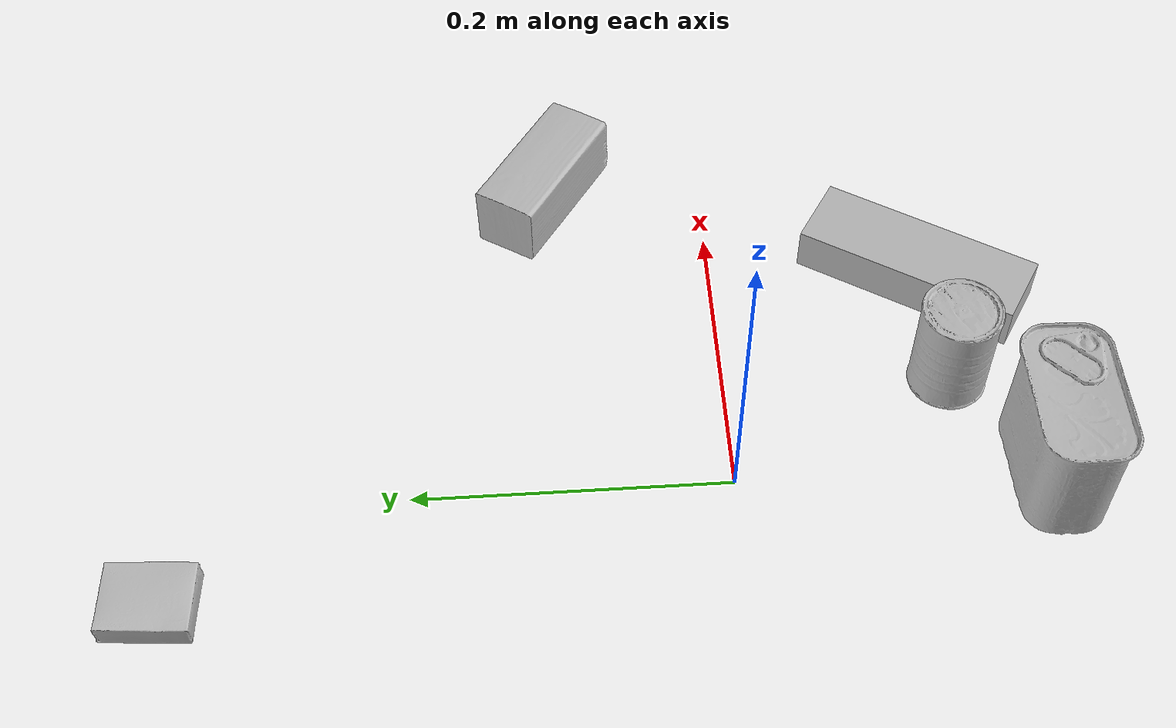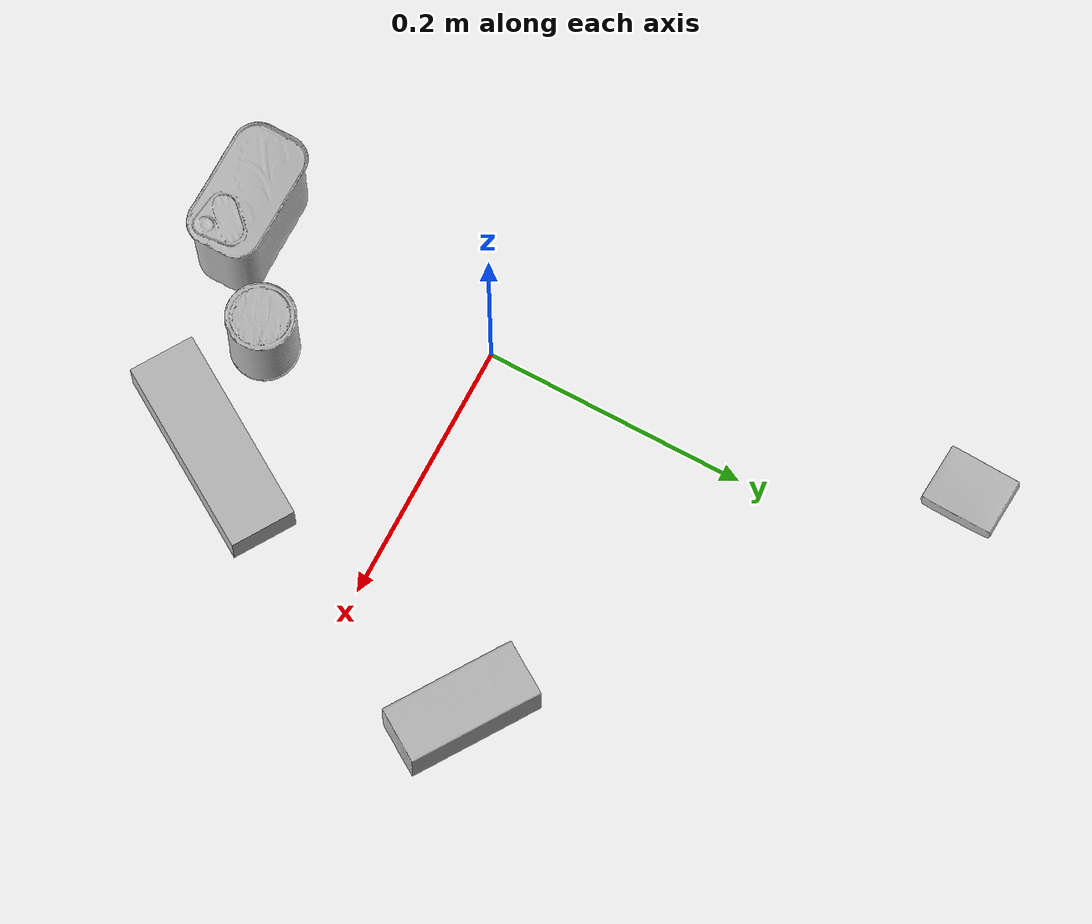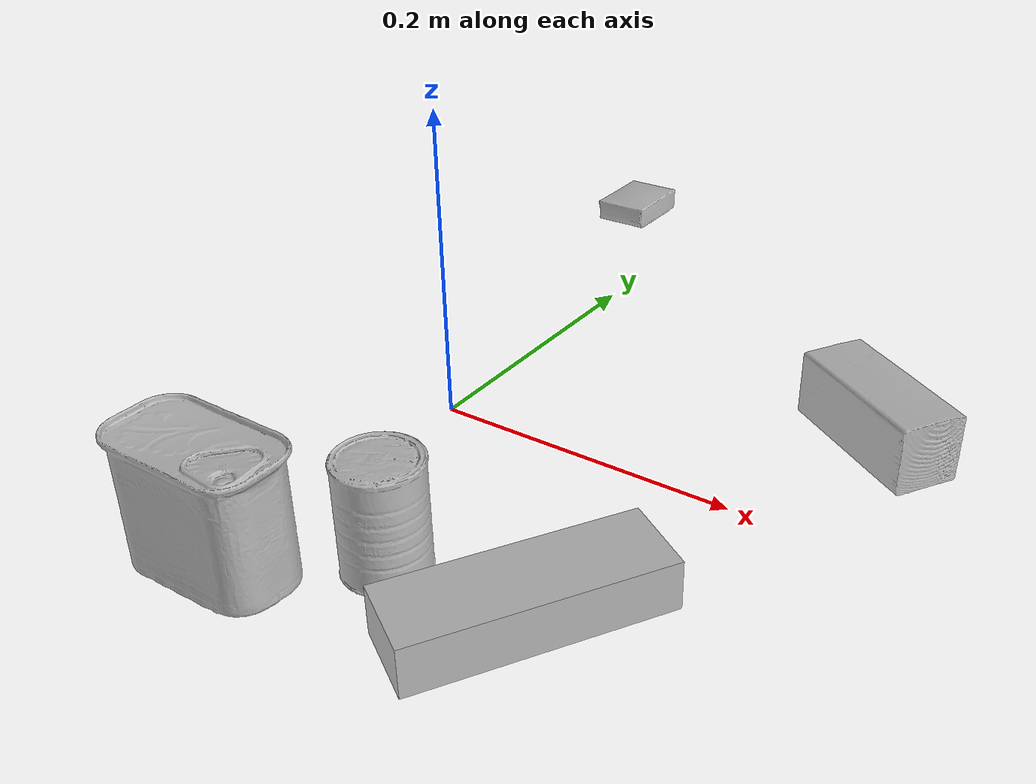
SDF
<sdf version="1.4">
  <world name="default">
    <light name="light1" type="point">
      <pose>0 0 1 0 0 0</pose>
      <diffuse>3 3 3 1</diffuse>
      <specular>3 3 3 1</specular>
    </light>
    <light name="light2" type="point">
      <pose>0 0.5 2 0 0 0</pose>
      <diffuse>1 1 1 1</diffuse>
      <specular>1 1 1 1</specular>
    </light>
    <light name="light3" type="point">
      <pose>0 0.5 2 0 0 0</pose>
      <diffuse>3 3 3 1</diffuse>
      <specular>3 3 3 1</specular>
    </light>
    <scene>
      <ambient>0.7 0.7 0.7</ambient>
    </scene>
    <model name="box1">
      <link name="link_box1">
        <collision name="default">
          <geometry>
            <mesh>
              <uri>model://pudding_box/collision_meshes/collision.obj</uri>
              <scale>0.5 0.5 0.5</scale>
            </mesh>
          </geometry>
          <surface>
            <friction>
              <ode>
                <mu>0.5</mu>
                <mu2>0.5</mu2>
              </ode>
            </friction>
          <contact>
        <ode>
            <max_vel>0</max_vel>
            <min_depth>0.0001</min_depth>
            <kp>1e8</kp>
        </ode>
    </contact></surface>
        </collision>
        <visual name="default">
          <geometry>
            <mesh>
              <uri>model://pudding_box/visual_meshes/visual.dae</uri>
              <scale>0.5 0.5 0.5</scale>
            </mesh>
          </geometry>
        </visual>
        <inertial>
          <mass>0.0642586499452591</mass>
          <pose>0.00024474109522998333 0.00040339428232982755 -0.0002594413817860186 0.005213101302141142 -0.006603800581388343 0.020079827019462423</pose>
          <inertia>
            <ixx>1.8160274e-05</ixx>
            <iyy>1.221836e-05</iyy>
            <izz>2.6818392e-05</izz>
            <ixy>0</ixy>
            <ixz>0</ixz>
            <iyz>0</iyz>
          </inertia>
        </inertial>
      </link>
      <pose>-0.06687970459461212 0.34906205534935 0.009862903505563736 0.022348495714525577 -0.011391701192312323 -0.04973683463534994</pose>
    </model>
    <model name="box2">
      <link name="link_box2">
        <collision name="default">
          <geometry>
            <mesh>
              <uri>model://wood_block/collision_meshes/collision.obj</uri>
              <scale>0.5 0.5 0.5</scale>
            </mesh>
          </geometry>
          <surface>
            <friction>
              <ode>
                <mu>0.5</mu>
                <mu2>0.5</mu2>
              </ode>
            </friction>
          <contact>
        <ode>
            <max_vel>0</max_vel>
            <min_depth>0.0001</min_depth>
            <kp>1e8</kp>
        </ode>
    </contact></surface>
        </collision>
        <visual name="default">
          <geometry>
            <mesh>
              <uri>model://wood_block/visual_meshes/visual.dae</uri>
              <scale>0.5 0.5 0.5</scale>
            </mesh>
          </geometry>
        </visual>
        <inertial>
          <mass>0.2432606816291809</mass>
          <pose>-2.9066577553749084e-06 -0.000285404734313488 0.00013204290007706732 -0.0522103103121059 -0.005192696448147362 -0.0068613788455752145</pose>
          <inertia>
            <ixx>8.1379905e-05</ixx>
            <iyy>0.0002570791</iyy>
            <izz>0.00025611752</izz>
            <ixy>0</ixy>
            <ixz>0</ixz>
            <iyz>0</iyz>
          </inertia>
        </inertial>
      </link>
      <pose>0.24507147073745728 0.10884879529476166 0.022629255428910255 -0.0052083890394520275 0.005718732260796624 -0.5738514774629762</pose>
    </model>
    <model name="box3">
      <link name="link_box3">
        <collision name="default">
          <geometry>
            <mesh>
              <uri>model://jenga/collision_meshes/collision.obj</uri>
              <scale>1.0 1.0 1.0</scale>
            </mesh>
          </geometry>
          <surface>
            <friction>
              <ode>
                <mu>0.5</mu>
                <mu2>0.5</mu2>
              </ode>
            </friction>
          <contact>
        <ode>
            <max_vel>0</max_vel>
            <min_depth>0.0001</min_depth>
            <kp>1e8</kp>
        </ode>
    </contact></surface>
        </collision>
        <visual name="default">
          <geometry>
            <mesh>
              <uri>model://jenga/visual_meshes/visual.dae</uri>
              <scale>1.0 1.0 1.0</scale>
            </mesh>
          </geometry>
        </visual>
        <inertial>
          <mass>0.20405839383602142</mass>
          <pose>-2.502855807051674e-07 -0.00010250010382151231 -4.0923401684267446e-05 0.0 -7.342155186052628e-07 0.0</pose>
          <inertia>
            <ixx>5.6467907e-05</ixx>
            <iyy>0.000382625</iyy>
            <izz>0.00040848472</izz>
            <ixy>0</ixy>
            <ixz>0</ixz>
            <iyz>0</iyz>
          </inertia>
        </inertial>
      </link>
      <pose>0.15782518684864044 -0.13902483880519867 0.014999995008111 4.226924567109888e-09 -2.8322755334496316e-09 1.0114809247567758</pose>
    </model>
    <model name="can1">
      <link name="link_can1">
        <collision name="default">
          <geometry>
            <mesh>
              <uri>model://potted_meat_can/collision_meshes/collision.obj</uri>
              <scale>1.0 1.0 1.0</scale>
            </mesh>
          </geometry>
          <surface>
            <friction>
              <ode>
                <mu>0.5</mu>
                <mu2>0.5</mu2>
              </ode>
            </friction>
          <contact>
        <ode>
            <max_vel>0</max_vel>
            <min_depth>0.0001</min_depth>
            <kp>1e8</kp>
        </ode>
    </contact></surface>
        </collision>
        <visual name="default">
          <geometry>
            <mesh>
              <uri>model://potted_meat_can/visual_meshes/visual.dae</uri>
              <scale>1.0 1.0 1.0</scale>
            </mesh>
          </geometry>
        </visual>
        <inertial>
          <mass>0.4665880799293518</mass>
          <pose>0.0002288814284838736 -5.989112105453387e-05 -0.0006367449532262981 -0.028093382538733707 -0.007232605550223235 0.01540626728411476</pose>
          <inertia>
            <ixx>0.0006002166</ixx>
            <iyy>0.0003646772</iyy>
            <izz>0.00043654343</izz>
            <ixy>0</ixy>
            <ixz>0</ixz>
            <iyz>0</iyz>
          </inertia>
        </inertial>
      </link>
      <pose>-0.0029820038471370935 -0.1966114044189453 0.042128004133701324 3.4594832686634e-08 -1.6039223364964673e-06 1.5490239061648607</pose>
    </model>
    <model name="can2">
      <link name="link_can2">
        <collision name="default">
          <geometry>
            <mesh>
              <uri>model://master_chef_can/collision_meshes/collision.obj</uri>
              <scale>0.5 0.5 0.5</scale>
            </mesh>
          </geometry>
          <surface>
            <friction>
              <ode>
                <mu>0.5</mu>
                <mu2>0.5</mu2>
              </ode>
            </friction>
          <contact>
        <ode>
            <max_vel>0</max_vel>
            <min_depth>0.0001</min_depth>
            <kp>1e8</kp>
        </ode>
    </contact></surface>
        </collision>
        <visual name="default">
          <geometry>
            <mesh>
              <uri>model://master_chef_can/visual_meshes/visual.dae</uri>
              <scale>0.5 0.5 0.5</scale>
            </mesh>
          </geometry>
        </visual>
        <inertial>
          <mass>0.1648906171321869</mass>
          <pose>-4.661964703700505e-05 1.3926853625889635e-07 -5.079993206891231e-05 -0.0017995099244119924 0.0006479308957776391 -0.6102586503741109</pose>
          <inertia>
            <ixx>9.677961e-05</ixx>
            <iyy>9.606731e-05</iyy>
            <izz>5.3478136e-05</izz>
            <ixy>0</ixy>
            <ixz>0</ixz>
            <iyz>0</iyz>
          </inertia>
        </inertial>
      </link>
      <pose>0.07146330922842026 -0.14534805715084076 0.035301998257637024 -1.417350073274481e-06 -9.915335690797444e-07 0.9222722564665949</pose>
    </model>
  <physics type="ode">
      <max_contacts>50</max_contacts>
      <ode>
        <solver>
          <type>quick</type>
          <iters>75</iters>
        </solver>
        <constraints>
          <contact_max_correcting_vel>0</contact_max_correcting_vel>
          <contact_surface_layer>0</contact_surface_layer>
        </constraints>
      </ode>
    </physics></world>
</sdf>
